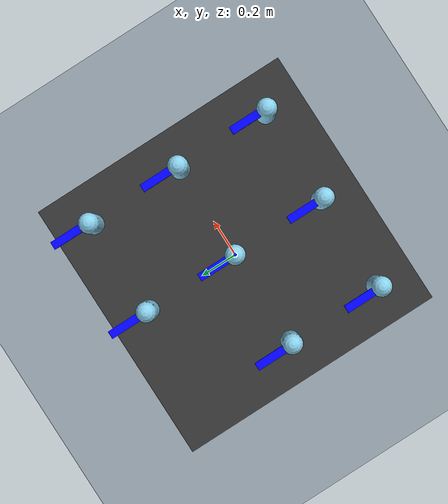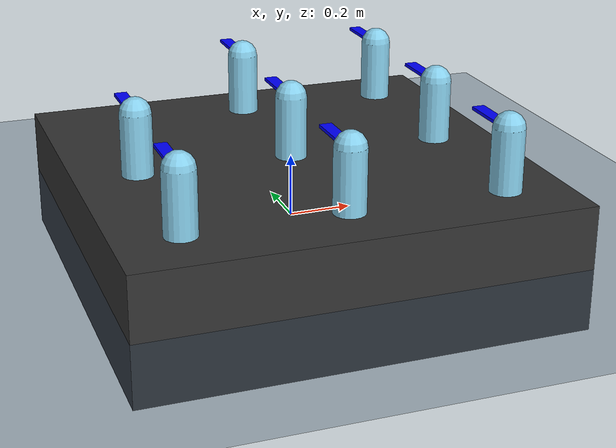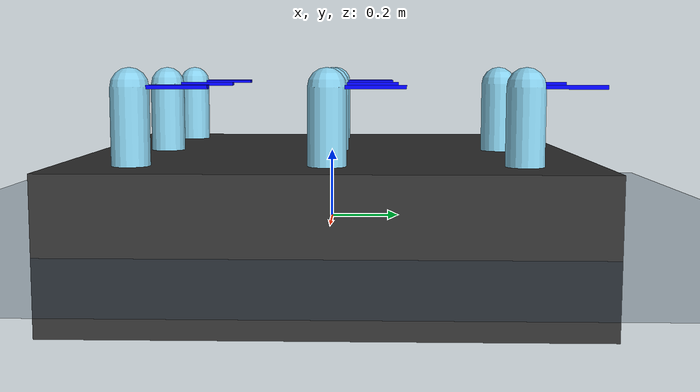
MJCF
<mujoco model="simple_joint">
    <asset>
        <texture name="grid" type="2d" builtin="checker" rgb1=".1 .2 .3"
                 rgb2=".2 .3 .4" width="300" height="300" mark="edge" markrgb=".2 .3 .4"/>
        <material name="grid" texture="grid" texrepeat="2 2" texuniform="true" reflectance=".2"/>
    </asset>

    <compiler angle="degree"/>
    <option timestep="0.01"/>

    <worldbody>
        <light pos="0 0 1" mode="trackcom"/>
        <geom name="ground" type="plane" size="5 5 10" material="grid"
            friction="1 0.05 0.0001"/>
        <camera name="y" pos="-.1 -.6 .3" xyaxes="1 0 0 0 1 2"/>

        <!-- 固定基座 -->
        <body name="base" pos="0 0 0">
            <geom type="box" size="0.7 0.7 0.2" rgba="0.2 0.2 0.2 1"/>

            <!-- 旋转关节 0 -->
            <body name="link_0" pos="0 0.5 0.2">
                <joint name="hinge_0" type="hinge" axis="0 0 1" damping="2.0" frictionloss="1.0"/>
                <geom type="capsule" fromto="0 0 0  0 0 0.2" size="0.05" rgba="0.53 0.81 0.92 1"/>
                <body name="indicator_0" pos="0 0.1 0.2">
                    <geom type="box" size="0.02 0.1 0.005" rgba="0 0 1 1"/>
                </body>
            </body>

            <!-- 旋转关节 1 -->
            <body name="link_1" pos="0.5 0.5 0.2">
                <joint name="hinge_1" type="hinge" axis="0 0 1" damping="2.0" frictionloss="1.0"/>
                <geom type="capsule" fromto="0 0 0  0 0 0.2" size="0.05" rgba="0.53 0.81 0.92 1"/>
                <body name="indicator_1" pos="0 0.1 0.2">
                    <geom type="box" size="0.02 0.1 0.005" rgba="0 0 1 1"/>
                </body>
            </body>

            <!-- 旋转关节 2 -->
            <body name="link_2" pos="-0.5 0 0.2">
                <joint name="hinge_2" type="hinge" axis="0 0 1" damping="2.0" frictionloss="1.0"/>
                <geom type="capsule" fromto="0 0 0  0 0 0.2" size="0.05" rgba="0.53 0.81 0.92 1"/>
                <body name="indicator_2" pos="0 0.1 0.2">
                    <geom type="box" size="0.02 0.1 0.005" rgba="0 0 1 1"/>
                </body>
            </body>

            <!-- 旋转关节 3 -->
            <body name="link_3" pos="0 0 0.2">
                <joint name="hinge_3" type="hinge" axis="0 0 1" damping="2.0" frictionloss="1.0"/>
                <geom type="capsule" fromto="0 0 0  0 0 0.2" size="0.05" rgba="0.53 0.81 0.92 1"/>
                <body name="indicator_3" pos="0 0.1 0.2">
                    <geom type="box" size="0.02 0.1 0.005" rgba="0 0 1 1"/>
                </body>
            </body>

            <!-- 旋转关节 4 -->
            <body name="link_4" pos="0.5 0 0.2">
                <joint name="hinge_4" type="hinge" axis="0 0 1" damping="2.0" frictionloss="1.0"/>
                <geom type="capsule" fromto="0 0 0  0 0 0.2" size="0.05" rgba="0.53 0.81 0.92 1"/>
                <body name="indicator_4" pos="0 0.1 0.2">
                    <geom type="box" size="0.02 0.1 0.005" rgba="0 0 1 1"/>
                </body>
            </body>

            <!-- 旋转关节 5 -->
            <body name="link_5" pos="-0.5 -0.5 0.2">
                <joint name="hinge_5" type="hinge" axis="0 0 1" damping="2.0" frictionloss="1.0"/>
                <geom type="capsule" fromto="0 0 0  0 0 0.2" size="0.05" rgba="0.53 0.81 0.92 1"/>
                <body name="indicator_5" pos="0 0.1 0.2">
                    <geom type="box" size="0.02 0.1 0.005" rgba="0 0 1 1"/>
                </body>
            </body>

            <!-- 旋转关节 6 -->
            <body name="link_6" pos="0 -0.5 0.2">
                <joint name="hinge_6" type="hinge" axis="0 0 1" damping="2.0" frictionloss="1.0"/>
                <geom type="capsule" fromto="0 0 0  0 0 0.2" size="0.05" rgba="0.53 0.81 0.92 1"/>
                <body name="indicator_6" pos="0 0.1 0.2">
                    <geom type="box" size="0.02 0.1 0.005" rgba="0 0 1 1"/>
                </body>
            </body>

            <!-- 旋转关节 7 -->
            <body name="link_7" pos="0.5 -0.5 0.2">
                <joint name="hinge_7" type="hinge" axis="0 0 1" damping="2.0" frictionloss="1.0"/>
                <geom type="capsule" fromto="0 0 0  0 0 0.2" size="0.05" rgba="0.53 0.81 0.92 1"/>
                <body name="indicator_7" pos="0 0.1 0.2">
                    <geom type="box" size="0.02 0.1 0.005" rgba="0 0 1 1"/>
                </body>
            </body>

        </body>
    </worldbody>

    <actuator>
        <motor joint="hinge_0" ctrlrange="-500 500"/>
        <motor joint="hinge_1" ctrlrange="-500 500"/>
        <motor joint="hinge_2" ctrlrange="-500 500"/>
        <motor joint="hinge_3" ctrlrange="-500 500"/>
        <motor joint="hinge_4" ctrlrange="-500 500"/>
        <motor joint="hinge_5" ctrlrange="-500 500"/>
        <motor joint="hinge_6" ctrlrange="-500 500"/>
        <motor joint="hinge_7" ctrlrange="-500 500"/>
    </actuator>

</mujoco>
